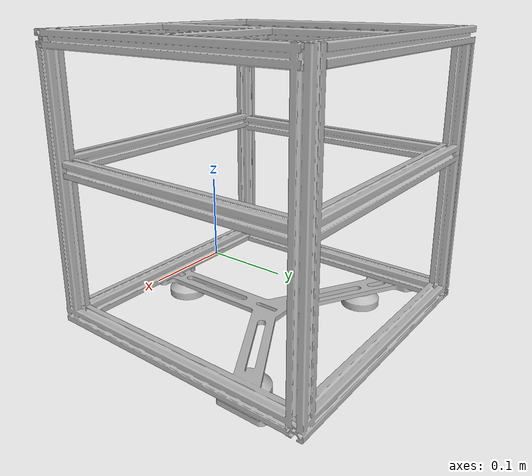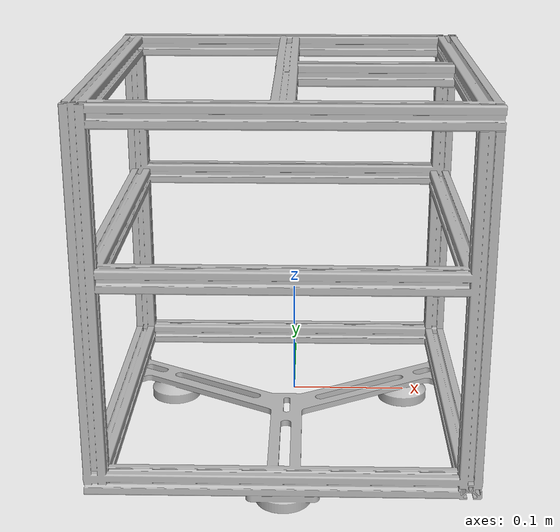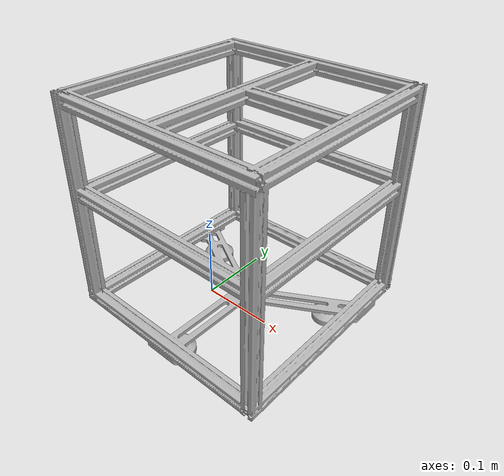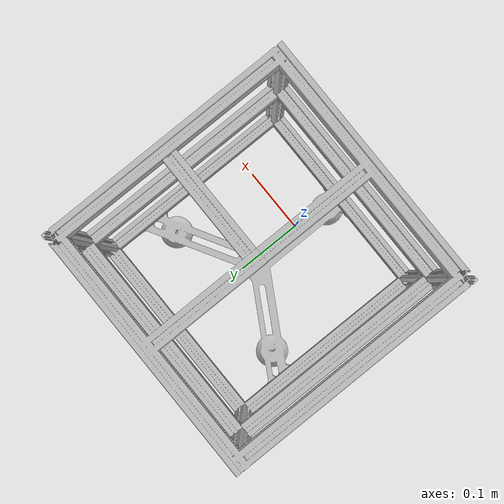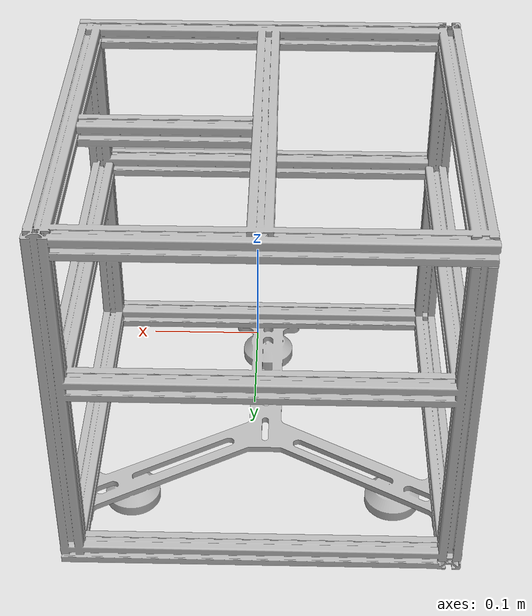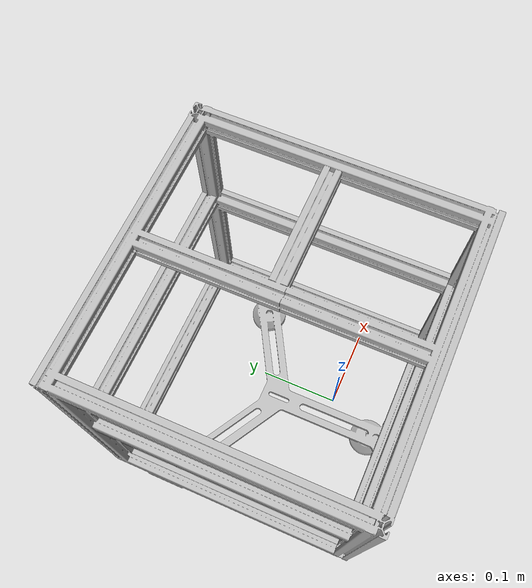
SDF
<?xml version="1.0"?>
<sdf version="1.8">
  <model name="abv_chassis">

    <!-- Base link with mesh + inertia -->
    <link name="base_link">
      <pose>0 0 0 0 0 0</pose>

      <collision name="collision">
        <geometry>
          <mesh>
            <uri>model://abv_chassis/meshes/abv_v1.stl</uri>
          </mesh>
        </geometry>
        <surface>
          <friction>
            <ode>
              <mu>0</mu>
              <mu2>0</mu2>
            </ode>
          </friction>
        </surface>
      </collision>

      <visual name="visual">
        <geometry>
          <mesh>
            <uri>model://abv_chassis/meshes/abv_v2.dae</uri>
          </mesh>
        </geometry>
      </visual>

      <inertial>
        <mass>12.7</mass>
        <inertia>
          <ixx>0.3</ixx><iyy>0.3</iyy><izz>0.3</izz>
          <ixy>0</ixy><ixz>0</ixz><iyz>0</iyz>
        </inertia>
      </inertial>
    </link>

    <!-- Vehicle frame -->
    <link name="vehicle_frame">
      <pose relative_to="base_link">0.01 0.065 0.2 0 0 0</pose>

      <inertial>
        <mass>0.1</mass>
        <inertia>
          <ixx>0.1</ixx><iyy>0.1</iyy><izz>0.1</izz>
          <ixy>0</ixy><ixz>0</ixz><iyz>0</iyz>
        </inertia>
      </inertial>
    </link>

    <joint name="vehicle_frame_to_base" type="fixed">
      <parent>base_link</parent>
      <child>vehicle_frame</child>
    </joint>

  </model>
</sdf>
